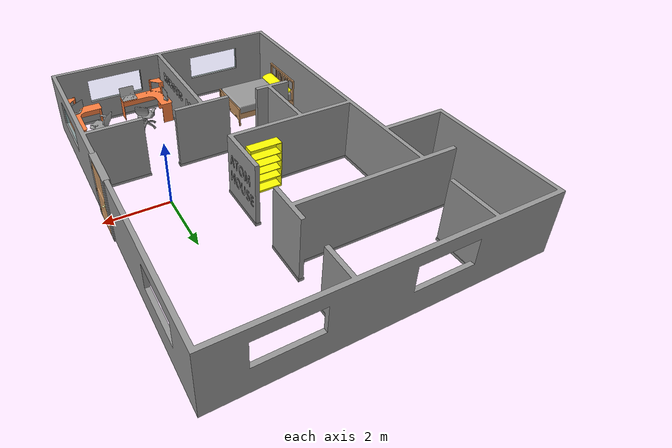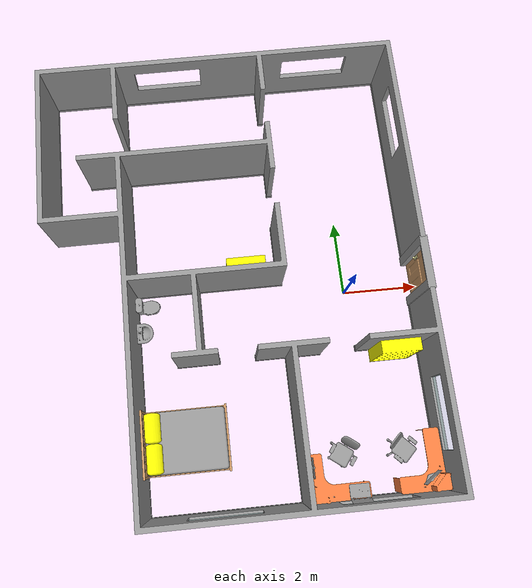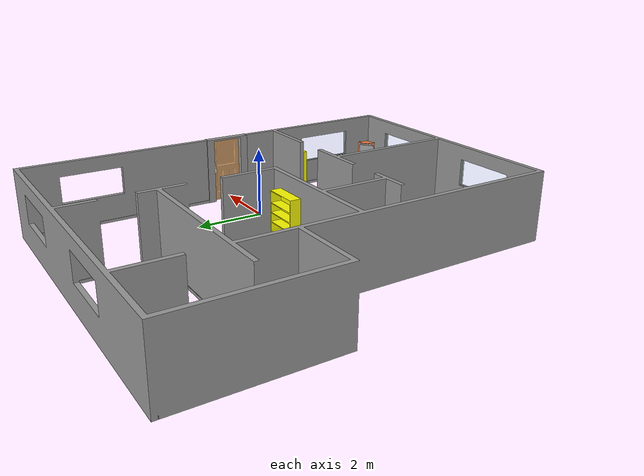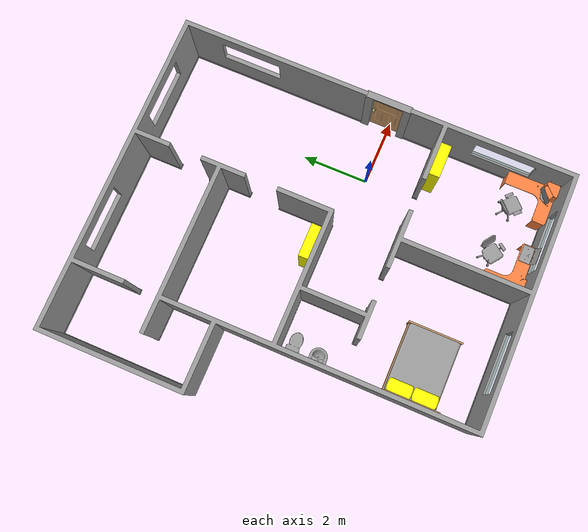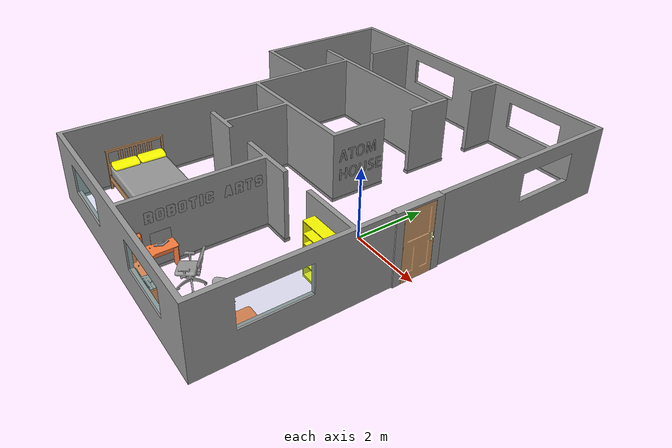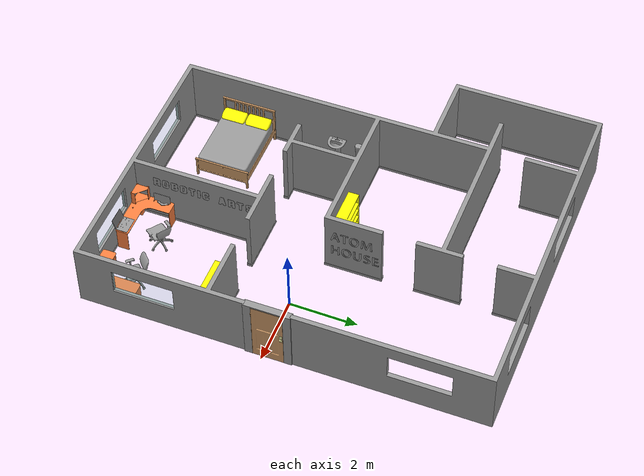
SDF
<sdf version="1.6">
 <world name="default">
  <model name="rai_bed">
   <link name="link_0">
    <pose>0.187675 0.002719 0 1.57 -0 0</pose>
    <inertial>
     <inertia><ixx>1</ixx><ixy>0</ixy><ixz>0</ixz><iyy>1</iyy><iyz>0</iyz><izz>1</izz></inertia>
     <mass>1</mass>
    </inertial>
    <gravity>0</gravity>
    <visual name="visual">
     <geometry><mesh><uri>model://rai_bed/meshes/rai_bed_frame.STL</uri><scale>1 1 1</scale></mesh></geometry>
     <material>
      <lighting>1</lighting>
      <script><uri>file://media/materials/scripts/gazebo.material</uri><name>Gazebo/Grey</name></script>
      <ambient>0.8 0.6 0.4 1</ambient>
      <diffuse>0.8 0.6 0.4 1</diffuse>
      <specular>0.01 0.01 0.01 1</specular>
      <emissive>0 0 0 1</emissive>
      <shader type="vertex"><normal_map>__default__</normal_map></shader>
     </material>
    </visual>
    <collision name="collision">
     <pose>0 0.21 0 0 -0 0</pose>
     <geometry><box><size>1.66019 0.417262 2.13243</size></box></geometry>
     <surface>
      <friction>
       <ode><mu>1</mu><mu2>1</mu2><fdir1>0 0 0</fdir1><slip1>0</slip1><slip2>0</slip2></ode>
       <torsional>
        <coefficient>1</coefficient>
        <patch_radius>0</patch_radius>
        <surface_radius>0</surface_radius>
        <use_patch_radius>1</use_patch_radius>
        <ode><slip>0</slip></ode>
       </torsional>
      </friction>
      <bounce><restitution_coefficient>0</restitution_coefficient><threshold>1e+06</threshold></bounce>
      <contact>
       <collide_without_contact>0</collide_without_contact>
       <collide_without_contact_bitmask>1</collide_without_contact_bitmask>
       <collide_bitmask>1</collide_bitmask>
       <ode>
        <soft_cfm>0</soft_cfm>
        <soft_erp>0.2</soft_erp>
        <kp>1e+13</kp>
        <kd>1</kd>
        <max_vel>0.01</max_vel>
        <min_depth>0</min_depth>
       </ode>
       <bullet>
        <split_impulse>1</split_impulse>
        <split_impulse_penetration_threshold>-0.01</split_impulse_penetration_threshold>
        <soft_cfm>0</soft_cfm>
        <soft_erp>0.2</soft_erp>
        <kp>1e+13</kp>
        <kd>1</kd>
       </bullet>
      </contact>
     </surface>
    </collision>
   </link>
   <link name="link_1">
    <pose>0.187675 0.002719 0 1.57 -0 0</pose>
    <inertial>
     <inertia><ixx>1</ixx><ixy>0</ixy><ixz>0</ixz><iyy>1</iyy><iyz>0</iyz><izz>1</izz></inertia>
     <mass>1</mass>
    </inertial>
    <gravity>0</gravity>
    <visual name="visual">
     <geometry><mesh><uri>model://rai_bed/meshes/rai_mattress.STL</uri><scale>1 1 1</scale></mesh></geometry>
     <material>
      <lighting>1</lighting>
      <script><uri>file://media/materials/scripts/gazebo.material</uri><name>Gazebo/Grey</name></script>
      <ambient>0.95 0.95 0.95 1</ambient>
      <diffuse>0.95 0.95 0.95 1</diffuse>
      <specular>0.01 0.01 0.01 1</specular>
      <emissive>0 0 0 1</emissive>
      <shader type="vertex"><normal_map>__default__</normal_map></shader>
     </material>
    </visual>
    <collision name="collision">
     <geometry><mesh><uri>model://rai_bed/meshes/rai_mattress.STL</uri><scale>1 1 1</scale></mesh></geometry>
     <surface>
      <friction>
       <ode><mu>1</mu><mu2>1</mu2><fdir1>0 0 0</fdir1><slip1>0</slip1><slip2>0</slip2></ode>
       <torsional>
        <coefficient>1</coefficient>
        <patch_radius>0</patch_radius>
        <surface_radius>0</surface_radius>
        <use_patch_radius>1</use_patch_radius>
        <ode><slip>0</slip></ode>
       </torsional>
      </friction>
      <bounce><restitution_coefficient>0</restitution_coefficient><threshold>1e+06</threshold></bounce>
      <contact>
       <collide_without_contact>0</collide_without_contact>
       <collide_without_contact_bitmask>1</collide_without_contact_bitmask>
       <collide_bitmask>1</collide_bitmask>
       <ode>
        <soft_cfm>0</soft_cfm>
        <soft_erp>0.2</soft_erp>
        <kp>1e+13</kp>
        <kd>1</kd>
        <max_vel>0.01</max_vel>
        <min_depth>0</min_depth>
       </ode>
       <bullet>
        <split_impulse>1</split_impulse>
        <split_impulse_penetration_threshold>-0.01</split_impulse_penetration_threshold>
        <soft_cfm>0</soft_cfm>
        <soft_erp>0.2</soft_erp>
        <kp>1e+13</kp>
        <kd>1</kd>
       </bullet>
      </contact>
     </surface>
    </collision>
   </link>
   <link name="link_2">
    <pose>0.187675 0.002719 0 1.57 -0 0</pose>
    <inertial>
     <inertia><ixx>1</ixx><ixy>0</ixy><ixz>0</ixz><iyy>1</iyy><iyz>0</iyz><izz>1</izz></inertia>
     <mass>1</mass>
    </inertial>
    <gravity>0</gravity>
    <visual name="visual">
     <geometry><mesh><uri>model://rai_bed/meshes/rai_pillow.STL</uri><scale>1 1 1</scale></mesh></geometry>
     <material>
      <lighting>1</lighting>
      <script><uri>file://media/materials/scripts/gazebo.material</uri><name>Gazebo/Grey</name></script>
      <ambient>1 1 0 1</ambient>
      <diffuse>0.7 0.7 0.7 1</diffuse>
      <specular>0.01 0.01 0.01 1</specular>
      <emissive>0 0 0 1</emissive>
      <shader type="vertex"><normal_map>__default__</normal_map></shader>
     </material>
    </visual>
    <collision name="collision">
     <pose>0.38 0.8 -0.82 0 -0 0</pose>
     <geometry><box><size>0.72 0.17 0.41</size></box></geometry>
     <surface>
      <friction>
       <ode><mu>1</mu><mu2>1</mu2><fdir1>0 0 0</fdir1><slip1>0</slip1><slip2>0</slip2></ode>
       <torsional>
        <coefficient>1</coefficient>
        <patch_radius>0</patch_radius>
        <surface_radius>0</surface_radius>
        <use_patch_radius>1</use_patch_radius>
        <ode><slip>0</slip></ode>
       </torsional>
      </friction>
      <bounce><restitution_coefficient>0</restitution_coefficient><threshold>1e+06</threshold></bounce>
      <contact>
       <collide_without_contact>0</collide_without_contact>
       <collide_without_contact_bitmask>1</collide_without_contact_bitmask>
       <collide_bitmask>1</collide_bitmask>
       <ode>
        <soft_cfm>0</soft_cfm>
        <soft_erp>0.2</soft_erp>
        <kp>1e+13</kp>
        <kd>1</kd>
        <max_vel>0.01</max_vel>
        <min_depth>0</min_depth>
       </ode>
       <bullet>
        <split_impulse>1</split_impulse>
        <split_impulse_penetration_threshold>-0.01</split_impulse_penetration_threshold>
        <soft_cfm>0</soft_cfm>
        <soft_erp>0.2</soft_erp>
        <kp>1e+13</kp>
        <kd>1</kd>
       </bullet>
      </contact>
     </surface>
    </collision>
   </link>
   <link name="link_3">
    <pose>-0.563026 -0.008157 0 1.57 -0 0</pose>
    <inertial>
     <inertia><ixx>1</ixx><ixy>0</ixy><ixz>0</ixz><iyy>1</iyy><iyz>0</iyz><izz>1</izz></inertia>
     <mass>1</mass>
    </inertial>
    <gravity>0</gravity>
    <visual name="visual">
     <geometry><mesh><uri>model://rai_bed/meshes/rai_pillow.STL</uri><scale>1 1 1</scale></mesh></geometry>
     <material>
      <lighting>1</lighting>
      <script><uri>file://media/materials/scripts/gazebo.material</uri><name>Gazebo/Grey</name></script>
      <ambient>1 1 0 1</ambient>
      <diffuse>0.7 0.7 0.7 1</diffuse>
      <specular>0.01 0.01 0.01 1</specular>
      <emissive>0 0 0 1</emissive>
      <shader type="vertex"><normal_map>__default__</normal_map></shader>
     </material>
    </visual>
    <collision name="collision">
     <pose>0.38 0.8 -0.82 0 -0 0</pose>
     <geometry><box><size>0.72 0.17 0.41</size></box></geometry>
     <surface>
      <friction>
       <ode><mu>1</mu><mu2>1</mu2><fdir1>0 0 0</fdir1><slip1>0</slip1><slip2>0</slip2></ode>
       <torsional>
        <coefficient>1</coefficient>
        <patch_radius>0</patch_radius>
        <surface_radius>0</surface_radius>
        <use_patch_radius>1</use_patch_radius>
        <ode><slip>0</slip></ode>
       </torsional>
      </friction>
      <bounce><restitution_coefficient>0</restitution_coefficient><threshold>1e+06</threshold></bounce>
      <contact>
       <collide_without_contact>0</collide_without_contact>
       <collide_without_contact_bitmask>1</collide_without_contact_bitmask>
       <collide_bitmask>1</collide_bitmask>
       <ode>
        <soft_cfm>0</soft_cfm>
        <soft_erp>0.2</soft_erp>
        <kp>1e+13</kp>
        <kd>1</kd>
        <max_vel>0.01</max_vel>
        <min_depth>0</min_depth>
       </ode>
       <bullet>
        <split_impulse>1</split_impulse>
        <split_impulse_penetration_threshold>-0.01</split_impulse_penetration_threshold>
        <soft_cfm>0</soft_cfm>
        <soft_erp>0.2</soft_erp>
        <kp>1e+13</kp>
        <kd>1</kd>
       </bullet>
      </contact>
     </surface>
    </collision>
   </link>
   <static>1</static>
   <pose>-4.55423 -3.70966 0 0 -0 1.57074</pose>
  </model>
  <model name="rai_desktop_table">
   <link name="link_5">
    <visual name="visual">
     <pose>0 0 0.72 1.57 -0 0</pose>
     <geometry>
      <mesh><uri>model://rai_desktop_table/meshes/rai_desktop_table.STL</uri><scale>1 1 1</scale></mesh>
     </geometry>
     <material>
      <lighting>1</lighting>
      <script><uri>file://media/materials/scripts/gazebo.material</uri><name>Gazebo/Grey</name></script>
      <ambient>1 0.5 0.25 1</ambient>
      <diffuse>1 0.5 0.25 1</diffuse>
      <specular>0.01 0.01 0.01 1</specular>
      <emissive>0 0 0 0.5</emissive>
      <shader type="vertex"><normal_map>__default__</normal_map></shader>
     </material>
    </visual>
    <collision name="collision">
     <pose>0 0 0.72 1.57 -0 0</pose>
     <geometry>
      <mesh><uri>model://rai_desktop_table/meshes/rai_desktop_table.STL</uri><scale>1 1 1</scale></mesh>
     </geometry>
    </collision>
   </link>
   <static>1</static>
   <pose>-1.18503 -4.83526 0 0 0 -3.13621</pose>
  </model>
  <model name="rai_desktop_table_0">
   <link name="link_5">
    <visual name="visual">
     <pose>0 0 0.72 1.57 -0 0</pose>
     <geometry>
      <mesh><uri>model://rai_desktop_table/meshes/rai_desktop_table.STL</uri><scale>1 1 1</scale></mesh>
     </geometry>
     <material>
      <lighting>1</lighting>
      <script><uri>file://media/materials/scripts/gazebo.material</uri><name>Gazebo/Grey</name></script>
      <ambient>1 0.5 0.25 1</ambient>
      <diffuse>1 0.5 0.25 1</diffuse>
      <specular>0.01 0.01 0.01 1</specular>
      <emissive>0 0 0 0.5</emissive>
      <shader type="vertex"><normal_map>__default__</normal_map></shader>
     </material>
    </visual>
    <collision name="collision">
     <pose>0 0 0.72 1.57 -0 0</pose>
     <geometry>
      <mesh><uri>model://rai_desktop_table/meshes/rai_desktop_table.STL</uri><scale>1 1 1</scale></mesh>
     </geometry>
    </collision>
   </link>
   <static>1</static>
   <pose>1.26121 -4.82338 0 0 0 -1.57029</pose>
  </model>
  <model name="rai_laptop">
   <link name="link_7">
    <visual name="visual">
     <pose>-0.04 0.48 0.025 1.57 -0 0</pose>
     <geometry><mesh><uri>model://rai_laptop/meshes/rai_laptop.STL</uri><scale>1 1 1</scale></mesh></geometry>
     <material>
      <lighting>1</lighting>
      <script><uri>file://media/materials/scripts/gazebo.material</uri><name>Gazebo/Grey</name></script>
      <ambient>0.2 0.2 0.2 0.5</ambient>
      <diffuse>0.7 0.7 0.7 0.5</diffuse>
      <specular>0.01 0.01 0.01 1</specular>
      <emissive>0 0 0 1</emissive>
      <shader type="vertex"><normal_map>__default__</normal_map></shader>
     </material>
    </visual>
    <collision name="collision">
     <pose>-0 -0.01 0.01 0 -0 0</pose>
     <geometry><box><size>0.5 0.35 0.03</size></box></geometry>
    </collision>
   </link>
   <static>1</static>
   <pose>-0.430335 -5.1255 0.722114 0 -0 3.13371</pose>
  </model>
  <model name="rai_pc">
   <link name="link_4">
    <visual name="visual">
     <pose>0 0 0.235 1.57 -0 0</pose>
     <geometry>
      <mesh><uri>model://rai_monitor_pc/meshes/rai_monitor_pc.STL</uri><scale>1 1 1</scale></mesh>
     </geometry>
     <material>
      <lighting>1</lighting>
      <script><uri>file://media/materials/scripts/gazebo.material</uri><name>Gazebo/Grey</name></script>
      <ambient>0.1 0.1 0.1 0.1</ambient>
      <diffuse>0.3 0.3 0.3 0.5</diffuse>
      <specular>0.01 0.01 0.01 1</specular>
      <emissive>0 0 0 0.5</emissive>
      <shader type="vertex"><normal_map>__default__</normal_map></shader>
     </material>
    </visual>
    <collision name="collision">
     <pose>0 0.005 0.19 0 -0 0</pose>
     <geometry><box><size>0.499 0.05 0.38</size></box></geometry>
    </collision>
   </link>
   <static>1</static>
   <pose>-1.53107 -4.46493 0.719363 0 -0 1.56982</pose>
  </model>
  <model name="rai_pc_0">
   <link name="link_4">
    <visual name="visual">
     <pose>0 0 0.235 1.57 -0 0</pose>
     <geometry>
      <mesh><uri>model://rai_monitor_pc/meshes/rai_monitor_pc.STL</uri><scale>1 1 1</scale></mesh>
     </geometry>
     <material>
      <lighting>1</lighting>
      <script><uri>file://media/materials/scripts/gazebo.material</uri><name>Gazebo/Grey</name></script>
      <ambient>0.1 0.1 0.1 0.1</ambient>
      <diffuse>0.3 0.3 0.3 0.5</diffuse>
      <specular>0.01 0.01 0.01 1</specular>
      <emissive>0 0 0 0.5</emissive>
      <shader type="vertex"><normal_map>__default__</normal_map></shader>
     </material>
    </visual>
    <collision name="collision">
     <pose>0 0.005 0.19 0 -0 0</pose>
     <geometry><box><size>0.499 0.05 0.38</size></box></geometry>
    </collision>
   </link>
   <static>1</static>
   <pose>1.33368 -4.96122 0.722719 0 0 -2.503</pose>
  </model>
  <model name="rai_desktop_chair_0">
   <link name="link_1">
    <pose>0 0 0.44 1.57312 -0 0</pose>
    <visual name="visual">
     <geometry>
      <mesh><uri>model://rai_desktop_chair/meshes/rai_desktop_chair.STL</uri><scale>1 1 1</scale></mesh>
     </geometry>
     <material>
      <lighting>1</lighting>
      <script><uri>file://media/materials/scripts/gazebo.material</uri><name>Gazebo/Grey</name></script>
      <ambient>0.1 0.1 0.1 0.1</ambient>
      <diffuse>0.3 0.3 0.3 0.5</diffuse>
      <specular>0.01 0.01 0.01 1</specular>
      <emissive>0 0 0 0.5</emissive>
      <shader type="vertex"><normal_map>__default__</normal_map></shader>
     </material>
    </visual>
    <collision name="collision">
     <pose>0.24 0.04 -0.33 0 -0 0</pose>
     <geometry><box><size>0.68 0.98 0.65</size></box></geometry>
    </collision>
   </link>
   <static>1</static>
   <pose>-1.05454 -4.28613 0 0 0 -0.633913</pose>
  </model>
  <model name="rai_desktop_chair_1">
   <link name="link_1">
    <pose>0 0 0.44 1.57312 -0 0</pose>
    <visual name="visual">
     <geometry>
      <mesh><uri>model://rai_desktop_chair/meshes/rai_desktop_chair.STL</uri><scale>1 1 1</scale></mesh>
     </geometry>
     <material>
      <lighting>1</lighting>
      <script><uri>file://media/materials/scripts/gazebo.material</uri><name>Gazebo/Grey</name></script>
      <ambient>0.1 0.1 0.1 0.1</ambient>
      <diffuse>0.3 0.3 0.3 0.5</diffuse>
      <specular>0.01 0.01 0.01 1</specular>
      <emissive>0 0 0 0.5</emissive>
      <shader type="vertex"><normal_map>__default__</normal_map></shader>
     </material>
    </visual>
    <collision name="collision">
     <pose>0.24 0.04 -0.33 0 -0 0</pose>
     <geometry><box><size>0.68 0.98 0.65</size></box></geometry>
    </collision>
   </link>
   <static>1</static>
   <pose>0.85751 -4.60261 0 0 -0 0.776936</pose>
  </model>
  <model name="library_1_0">
   <link name="link_1">
    <visual name="visual">
     <pose>0 0 1.235 1.57 -0 0</pose>
     <geometry>
      <mesh><uri>model://rai_self_book/meshes/rai_self_book.STL</uri><scale>1 1 1</scale></mesh>
     </geometry>
     <material>
      <lighting>1</lighting>
      <script><uri>file://media/materials/scripts/gazebo.material</uri><name>Gazebo/Grey</name></script>
      <ambient>1 1 0 1</ambient>
      <diffuse>1 1 0 1</diffuse>
      <specular>0.01 0.01 0.01 1</specular>
      <emissive>0 0 0 1</emissive>
      <shader type="vertex"><normal_map>__default__</normal_map></shader>
     </material>
    </visual>
    <collision name="collision">
     <pose>-0.01 -0.16 0.78 0 -0 0</pose>
     <geometry><box><size>1.02 0.32 1.56</size></box></geometry>
    </collision>
   </link>
   <static>1</static>
   <pose>0.95038 -1.61803 0 0 -0 0</pose>
  </model>
  <model name="rai_bathroom_sink_0">
   <link name="link_3">
    <visual name="visual">
     <pose>-0.05 0.115 0 1.57 -0 0</pose>
     <geometry>
      <mesh><uri>model://rai_bathroom_sink/meshes/rai_bathroom_sink.STL</uri><scale>1 1 1</scale></mesh>
     </geometry>
     <material>
      <lighting>1</lighting>
      <script><uri>file://media/materials/scripts/gazebo.material</uri><name>Gazebo/Grey</name></script>
      <ambient>0.93 0.93 0.93 0.93</ambient>
      <diffuse>0.93 0.93 0.93 0.93</diffuse>
      <specular>0.01 0.01 0.01 1</specular>
      <emissive>0 0 0 1</emissive>
      <shader type="vertex"><normal_map>__default__</normal_map></shader>
     </material>
    </visual>
    <collision name="collision">
     <pose>0 0 0.4 0 -0 0</pose>
     <geometry><box><size>0.15 0.15 0.8</size></box></geometry>
    </collision>
   </link>
   <static>1</static>
   <pose>-5.54859 -0.730184 0 0 0 -1.56543</pose>
  </model>
  <model name="rai_toilette_0">
   <link name="link_4">
    <visual name="visual">
     <pose>0 0.06 0 1.57 -0 0</pose>
     <geometry><mesh><uri>model://rai_toilette/meshes/rai_toilette.STL</uri><scale>1 1 1</scale></mesh></geometry>
     <material>
      <lighting>1</lighting>
      <script><uri>file://media/materials/scripts/gazebo.material</uri><name>Gazebo/Grey</name></script>
      <ambient>0.95 0.95 0.95 0.95</ambient>
      <diffuse>0.95 0.95 0.95 0.95</diffuse>
      <specular>0.01 0.01 0.01 1</specular>
      <emissive>0 0 0 1</emissive>
      <shader type="vertex"><normal_map>__default__</normal_map></shader>
     </material>
    </visual>
    <collision name="collision">
     <pose>0 0 0.21 0 -0 0</pose>
     <geometry><box><size>0.39 0.53 0.43</size></box></geometry>
    </collision>
   </link>
   <static>1</static>
   <pose>-5.27195 0.024511 0 0 -0 1.56529</pose>
  </model>
  <model name="library_1_1">
   <link name="link_1">
    <visual name="visual">
     <pose>0 0 1.235 1.57 -0 0</pose>
     <geometry>
      <mesh><uri>model://rai_self_book/meshes/rai_self_book.STL</uri><scale>1 1 1</scale></mesh>
     </geometry>
     <material>
      <lighting>1</lighting>
      <script><uri>file://media/materials/scripts/gazebo.material</uri><name>Gazebo/Grey</name></script>
      <ambient>1 1 0 1</ambient>
      <diffuse>1 1 0 1</diffuse>
      <specular>0.01 0.01 0.01 1</specular>
      <emissive>0 0 0 1</emissive>
      <shader type="vertex"><normal_map>__default__</normal_map></shader>
     </material>
    </visual>
    <collision name="collision">
     <pose>-0.01 -0.16 0.78 0 -0 0</pose>
     <geometry><box><size>1.02 0.32 1.56</size></box></geometry>
    </collision>
   </link>
   <static>1</static>
   <pose>-2.65705 0.533308 0 0 0 -3.14155</pose>
  </model>
  <model name="rai_roboticarts_name">
   <link name="link_1">
    <pose>0 0 0 1.57 -0 1.57</pose>
    <inertial>
     <mass>1</mass>
     <inertia>
      <ixx>0.166667</ixx>
      <ixy>0</ixy>
      <ixz>0</ixz>
      <iyy>0.166667</iyy>
      <iyz>0</iyz>
      <izz>0.166667</izz>
     </inertia>
    </inertial>
    <gravity>0</gravity>
    <visual name="visual">
     <geometry>
      <mesh><uri>model://rai_roboticarts_name/meshes/rai_roboticarts_name.STL</uri><scale>1 1 1</scale></mesh>
     </geometry>
     <material>
      <lighting>1</lighting>
      <script><uri>file://media/materials/scripts/gazebo.material</uri><name>Gazebo/Grey</name></script>
      <ambient>0 0 0 1</ambient>
      <diffuse>0 0 0 1</diffuse>
      <specular>0.01 0.01 0.01 1</specular>
      <emissive>0 0 0 1</emissive>
      <shader type="vertex"><normal_map>__default__</normal_map></shader>
     </material>
    </visual>
   </link>
   <static>1</static>
   <pose>-1.65666 -4.75389 1.29309 0 -0 0</pose>
  </model>
  <model name="rai_atomhouse_name">
   <link name="link_0">
    <pose>0 0 0 1.57 -0 1.57</pose>
    <inertial>
     <mass>1</mass>
     <inertia>
      <ixx>0.166667</ixx>
      <ixy>0</ixy>
      <ixz>0</ixz>
      <iyy>0.166667</iyy>
      <iyz>0</iyz>
      <izz>0.166667</izz>
     </inertia>
    </inertial>
    <gravity>0</gravity>
    <visual name="visual">
     <geometry>
      <mesh><uri>model://rai_atomhouse_name/meshes/rai_atomhouse_name.STL</uri><scale>1 1 1</scale></mesh>
     </geometry>
     <material>
      <lighting>1</lighting>
      <script><uri>file://media/materials/scripts/gazebo.material</uri><name>Gazebo/Grey</name></script>
      <ambient>0 0 0 1</ambient>
      <diffuse>0 0 0 1</diffuse>
      <specular>0.01 0.01 0.01 1</specular>
      <emissive>0 0 0 1</emissive>
      <shader type="vertex"><normal_map>__default__</normal_map></shader>
     </material>
    </visual>
   </link>
   <static>1</static>
   <pose>-1.65777 0.560992 1.16689 0 -0 0</pose>
  </model>
  <model name="rai_empty_house_0">
   <link name="link_0">
    <pose>0 0 0 0 -0 1.5708</pose>
    <inertial>
     <mass>1</mass>
     <inertia>
      <ixx>0.166667</ixx>
      <ixy>0</ixy>
      <ixz>0</ixz>
      <iyy>0.166667</iyy>
      <iyz>0</iyz>
      <izz>0.166667</izz>
     </inertia>
    </inertial>
    <gravity>0</gravity>
    <visual name="visual">
     <geometry>
      <mesh><uri>model://rai_empty_house/meshes/rai_empty_house.STL</uri><scale>1 1 1</scale></mesh>
     </geometry>
     <material>
      <lighting>1</lighting>
      <script><uri>file://media/materials/scripts/gazebo.material</uri><name>Gazebo/Grey</name></script>
      <ambient>0.95 0.95 0.95 1</ambient>
      <diffuse>0.95 0.95 0.95 1</diffuse>
      <specular>0.01 0.01 0.01 1</specular>
      <emissive>0 0 0 1</emissive>
      <shader type="vertex"><normal_map>__default__</normal_map></shader>
     </material>
    </visual>
    <collision name="collision">
     <geometry>
      <mesh><uri>model://rai_empty_house/meshes/rai_empty_house.STL</uri><scale>1 1 1</scale></mesh>
     </geometry>
     <surface>
      <friction>
       <ode><mu>1</mu><mu2>1</mu2><fdir1>0 0 0</fdir1><slip1>0</slip1><slip2>0</slip2></ode>
       <torsional>
        <coefficient>1</coefficient>
        <patch_radius>0</patch_radius>
        <surface_radius>0</surface_radius>
        <use_patch_radius>1</use_patch_radius>
        <ode><slip>0</slip></ode>
       </torsional>
      </friction>
      <bounce><restitution_coefficient>0</restitution_coefficient><threshold>1e+06</threshold></bounce>
      <contact>
       <collide_without_contact>0</collide_without_contact>
       <collide_without_contact_bitmask>1</collide_without_contact_bitmask>
       <collide_bitmask>1</collide_bitmask>
       <ode>
        <soft_cfm>0</soft_cfm>
        <soft_erp>0.2</soft_erp>
        <kp>1e+13</kp>
        <kd>1</kd>
        <max_vel>0.01</max_vel>
        <min_depth>0</min_depth>
       </ode>
       <bullet>
        <split_impulse>1</split_impulse>
        <split_impulse_penetration_threshold>-0.01</split_impulse_penetration_threshold>
        <soft_cfm>0</soft_cfm>
        <soft_erp>0.2</soft_erp>
        <kp>1e+13</kp>
        <kd>1</kd>
       </bullet>
      </contact>
     </surface>
    </collision>
   </link>
   <link name="link_1">
    <pose>0 0 0 0 -0 1.5708</pose>
    <inertial>
     <mass>1</mass>
     <inertia>
      <ixx>0.166667</ixx>
      <ixy>0</ixy>
      <ixz>0</ixz>
      <iyy>0.166667</iyy>
      <iyz>0</iyz>
      <izz>0.166667</izz>
     </inertia>
    </inertial>
    <gravity>0</gravity>
    <visual name="visual">
     <geometry>
      <mesh><uri>model://rai_empty_house/meshes/rai_skirting_house.STL</uri><scale>1 1 1</scale></mesh>
     </geometry>
     <material>
      <lighting>1</lighting>
      <script><uri>file://media/materials/scripts/gazebo.material</uri><name>Gazebo/Grey</name></script>
      <ambient>0 0 0 1</ambient>
      <diffuse>0 0 0 1</diffuse>
      <specular>0.01 0.01 0.01 1</specular>
      <emissive>0 0 0 1</emissive>
      <shader type="vertex"><normal_map>__default__</normal_map></shader>
     </material>
    </visual>
   </link>
   <static>1</static>
   <pose>1.86534 -5.43757 0 0 -0 0</pose>
  </model>
  <model name="rai_main_door">
   <link name="link_2">
    <pose>0.188195 -0.524993 1.9972 3.14159 0.001593 3.14159</pose>
    <inertial>
     <mass>1</mass>
     <inertia>
      <ixx>0.166667</ixx>
      <ixy>0</ixy>
      <ixz>0</ixz>
      <iyy>0.166667</iyy>
      <iyz>0</iyz>
      <izz>0.166667</izz>
     </inertia>
    </inertial>
    <visual name="visual">
     <geometry>
      <mesh><uri>model://rai_main_door/meshes/rai_frame_door.STL</uri><scale>1 1 1</scale></mesh>
     </geometry>
     <material>
      <lighting>1</lighting>
      <script><uri>file://media/materials/scripts/gazebo.material</uri><name>Gazebo/Grey</name></script>
      <ambient>0.1 0.1 0.1 0.1</ambient>
      <diffuse>0.3 0.3 0.3 0.5</diffuse>
      <specular>0.01 0.01 0.01 1</specular>
      <emissive>0 0 0 0.5</emissive>
      <shader type="vertex"><normal_map>__default__</normal_map></shader>
     </material>
    </visual>
    <collision name="collision">
     <geometry>
      <mesh><uri>model://rai_main_door/meshes/rai_frame_door.STL</uri><scale>1 1 1</scale></mesh>
     </geometry>
     <surface>
      <friction>
       <ode><mu>1</mu><mu2>1</mu2><fdir1>0 0 0</fdir1><slip1>0</slip1><slip2>0</slip2></ode>
       <torsional>
        <coefficient>1</coefficient>
        <patch_radius>0</patch_radius>
        <surface_radius>0</surface_radius>
        <use_patch_radius>1</use_patch_radius>
        <ode><slip>0</slip></ode>
       </torsional>
      </friction>
      <bounce><restitution_coefficient>0</restitution_coefficient><threshold>1e+06</threshold></bounce>
      <contact>
       <collide_without_contact>0</collide_without_contact>
       <collide_without_contact_bitmask>1</collide_without_contact_bitmask>
       <collide_bitmask>1</collide_bitmask>
       <ode>
        <soft_cfm>0</soft_cfm>
        <soft_erp>0.2</soft_erp>
        <kp>1e+13</kp>
        <kd>1</kd>
        <max_vel>0.01</max_vel>
        <min_depth>0</min_depth>
       </ode>
       <bullet>
        <split_impulse>1</split_impulse>
        <split_impulse_penetration_threshold>-0.01</split_impulse_penetration_threshold>
        <soft_cfm>0</soft_cfm>
        <soft_erp>0.2</soft_erp>
        <kp>1e+13</kp>
        <kd>1</kd>
       </bullet>
      </contact>
     </surface>
    </collision>
   </link>
   <link name="link_3">
    <pose>0.188195 -0.524993 2.0072 3.14159 0.001593 3.14159</pose>
    <inertial>
     <mass>1</mass>
     <inertia>
      <ixx>0.166667</ixx>
      <ixy>0</ixy>
      <ixz>0</ixz>
      <iyy>0.166667</iyy>
      <iyz>0</iyz>
      <izz>0.166667</izz>
     </inertia>
    </inertial>
    <visual name="visual">
     <geometry><mesh><uri>model://rai_main_door/meshes/rai_door.STL</uri><scale>1 1 1</scale></mesh></geometry>
     <material>
      <lighting>1</lighting>
      <script><uri>file://media/materials/scripts/gazebo.material</uri><name>Gazebo/Grey</name></script>
      <ambient>0.8 0.6 0.4 1</ambient>
      <diffuse>0.8 0.6 0.4 1</diffuse>
      <specular>0.01 0.01 0.01 1</specular>
      <emissive>0 0 0 1</emissive>
      <shader type="vertex"><normal_map>__default__</normal_map></shader>
     </material>
    </visual>
    <collision name="collision">
     <geometry><mesh><uri>model://rai_main_door/meshes/rai_door.STL</uri><scale>1 1 1</scale></mesh></geometry>
     <surface>
      <friction>
       <ode><mu>1</mu><mu2>1</mu2><fdir1>0 0 0</fdir1><slip1>0</slip1><slip2>0</slip2></ode>
       <torsional>
        <coefficient>1</coefficient>
        <patch_radius>0</patch_radius>
        <surface_radius>0</surface_radius>
        <use_patch_radius>1</use_patch_radius>
        <ode><slip>0</slip></ode>
       </torsional>
      </friction>
      <bounce><restitution_coefficient>0</restitution_coefficient><threshold>1e+06</threshold></bounce>
      <contact>
       <collide_without_contact>0</collide_without_contact>
       <collide_without_contact_bitmask>1</collide_without_contact_bitmask>
       <collide_bitmask>1</collide_bitmask>
       <ode>
        <soft_cfm>0</soft_cfm>
        <soft_erp>0.2</soft_erp>
        <kp>1e+13</kp>
        <kd>1</kd>
        <max_vel>0.01</max_vel>
        <min_depth>0</min_depth>
       </ode>
       <bullet>
        <split_impulse>1</split_impulse>
        <split_impulse_penetration_threshold>-0.01</split_impulse_penetration_threshold>
        <soft_cfm>0</soft_cfm>
        <soft_erp>0.2</soft_erp>
        <kp>1e+13</kp>
        <kd>1</kd>
       </bullet>
      </contact>
     </surface>
    </collision>
   </link>
   <link name="link_4">
    <pose>0.188195 -0.524993 1.9972 3.14159 0.001593 3.14159</pose>
    <inertial>
     <mass>1</mass>
     <inertia>
      <ixx>0.166667</ixx>
      <ixy>0</ixy>
      <ixz>0</ixz>
      <iyy>0.166667</iyy>
      <iyz>0</iyz>
      <izz>0.166667</izz>
     </inertia>
    </inertial>
    <gravity>0</gravity>
    <visual name="visual">
     <geometry>
      <mesh><uri>model://rai_main_door/meshes/rai_knob_door.STL</uri><scale>1 1 1</scale></mesh>
     </geometry>
     <material>
      <lighting>1</lighting>
      <script><uri>file://media/materials/scripts/gazebo.material</uri><name>Gazebo/Grey</name></script>
      <ambient>1 1 0.3 1</ambient>
      <diffuse>1 1 0.7 1</diffuse>
      <specular>0.01 0.01 0.01 1</specular>
      <emissive>0 0 0 1</emissive>
      <shader type="vertex"><normal_map>__default__</normal_map></shader>
     </material>
    </visual>
   </link>
   <link name="link_5">
    <pose>-0.564583 1.57498 1.9984 3.14159 0.001593 -0.001593</pose>
    <inertial>
     <mass>1</mass>
     <inertia>
      <ixx>0.166667</ixx>
      <ixy>0</ixy>
      <ixz>0</ixz>
      <iyy>0.166667</iyy>
      <iyz>0</iyz>
      <izz>0.166667</izz>
     </inertia>
    </inertial>
    <gravity>0</gravity>
    <visual name="visual">
     <geometry>
      <mesh><uri>model://rai_main_door/meshes/rai_knob_door.STL</uri><scale>1 1 1</scale></mesh>
     </geometry>
     <material>
      <lighting>1</lighting>
      <script><uri>file://media/materials/scripts/gazebo.material</uri><name>Gazebo/Grey</name></script>
      <ambient>1 1 0.3 1</ambient>
      <diffuse>1 1 0.7 1</diffuse>
      <specular>0.01 0.01 0.01 1</specular>
      <emissive>0 0 0 1</emissive>
      <shader type="vertex"><normal_map>__default__</normal_map></shader>
     </material>
    </visual>
   </link>
   <static>1</static>
   <pose>2.39476 0.745189 0.492682 0 -0 1.5706</pose>
  </model>
  <model name="rai_window">
   <link name="link_0">
    <pose>0 0 0 1.57 -0 1.57</pose>
    <visual name="visual">
     <geometry><mesh><uri>model://rai_window/meshes/rai_window.STL</uri><scale>1 1 1</scale></mesh></geometry>
     <material>
      <lighting>1</lighting>
      <script><uri>file://media/materials/scripts/gazebo.material</uri><name>Gazebo/Grey</name></script>
      <ambient>0.53 1 1 0.2</ambient>
      <diffuse>0.53 1 1 0.2</diffuse>
      <specular>0.01 0.01 0.01 1</specular>
      <emissive>0 0 0 1</emissive>
      <shader type="vertex"><normal_map>__default__</normal_map></shader>
     </material>
     <transparency>0.5</transparency>
    </visual>
   </link>
   <static>1</static>
   <pose>1.79091 -4.35739 0.801752 0 -0 0</pose>
  </model>
  <model name="rai_window_1">
   <link name="link_0">
    <pose>0 0 0 1.57 -0 1.57</pose>
    <visual name="visual">
     <geometry><mesh><uri>model://rai_window/meshes/rai_window.STL</uri><scale>1 1 1</scale></mesh></geometry>
     <material>
      <lighting>1</lighting>
      <script><uri>file://media/materials/scripts/gazebo.material</uri><name>Gazebo/Grey</name></script>
      <ambient>0.53 1 1 0.2</ambient>
      <diffuse>0.53 1 1 0.2</diffuse>
      <specular>0.01 0.01 0.01 1</specular>
      <emissive>0 0 0 1</emissive>
      <shader type="vertex"><normal_map>__default__</normal_map></shader>
     </material>
     <transparency>0.5</transparency>
    </visual>
   </link>
   <static>1</static>
   <pose>-0.998855 -5.36968 0.798337 0 0 -1.57222</pose>
  </model>
  <model name="rai_window_2">
   <link name="link_0">
    <pose>0 0 0 1.57 -0 1.57</pose>
    <visual name="visual">
     <geometry><mesh><uri>model://rai_window/meshes/rai_window.STL</uri><scale>1 1 1</scale></mesh></geometry>
     <material>
      <lighting>1</lighting>
      <script><uri>file://media/materials/scripts/gazebo.material</uri><name>Gazebo/Grey</name></script>
      <ambient>0.53 1 1 0.2</ambient>
      <diffuse>0.53 1 1 0.2</diffuse>
      <specular>0.01 0.01 0.01 1</specular>
      <emissive>0 0 0 1</emissive>
      <shader type="vertex"><normal_map>__default__</normal_map></shader>
     </material>
     <transparency>0.5</transparency>
    </visual>
   </link>
   <static>1</static>
   <pose>-4.64585 -5.36055 0.78977 0 0 -1.57088</pose>
  </model>
 </world>
</sdf>
